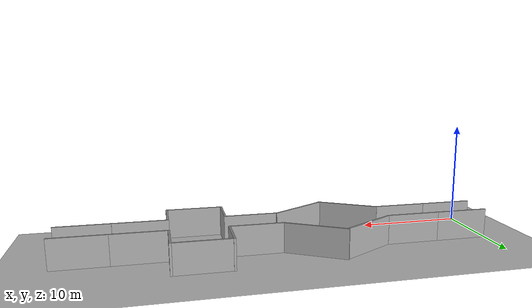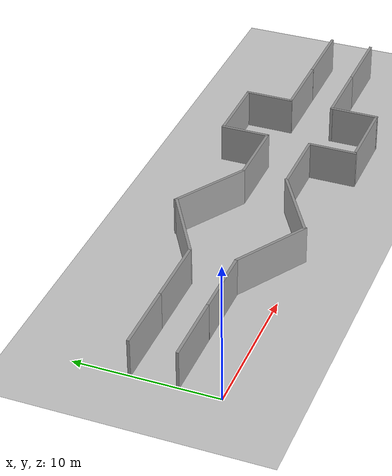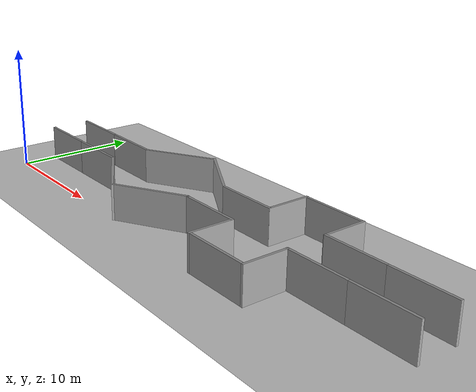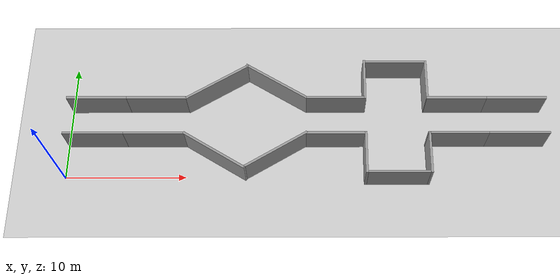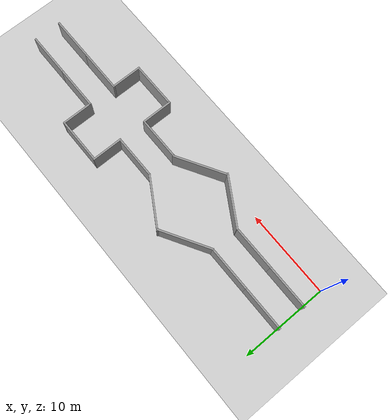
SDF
<sdf version="1.7">
 <world name="default">
  <light name="sun" type="directional">
   <pose>0 0 10 0 -0 0</pose>
   <diffuse>0.8 0.8 0.8 1</diffuse>
   <specular>0.2 0.2 0.2 1</specular>
   <attenuation>
    <range>1000</range>
    <constant>0.9</constant>
    <linear>0.01</linear>
    <quadratic>0.001</quadratic>
   </attenuation>
   <direction>-0.5 0.1 -0.9</direction>
   <spot><inner_angle>0</inner_angle><outer_angle>0</outer_angle><falloff>0</falloff></spot>
  </light>
  <model name="ground_plane">
   <static>1</static>
   <link name="link">
    <collision name="collision">
     <geometry><plane><normal>0 0 1</normal><size>100 100</size></plane></geometry>
     <surface>
      <contact><collide_bitmask>65535</collide_bitmask></contact>
      <friction><ode><mu>100</mu><mu2>50</mu2></ode></friction>
     </surface>
    </collision>
    <visual name="visual">
     <cast_shadows>0</cast_shadows>
     <geometry><plane><normal>0 0 1</normal><size>100 100</size></plane></geometry>
     <material>
      <script><uri>file://media/materials/scripts/gazebo.material</uri><name>Gazebo/Grey</name></script>
     </material>
    </visual>
   </link>
  </model>
  <gravity>0 0 -9.8</gravity>
  <magnetic_field>6e-06 2.3e-05 -4.2e-05</magnetic_field>
  <atmosphere type="adiabatic"/>
  <physics type="ode">
   <max_step_size>0.001</max_step_size>
   <real_time_factor>1</real_time_factor>
   <real_time_update_rate>1000</real_time_update_rate>
  </physics>
  <scene><ambient>0.4 0.4 0.4 1</ambient><background>0.7 0.7 0.7 1</background><shadows>1</shadows></scene>
  <spherical_coordinates>
   <surface_model>EARTH_WGS84</surface_model>
   <latitude_deg>0</latitude_deg>
   <longitude_deg>0</longitude_deg>
   <elevation>0</elevation>
   <heading_deg>0</heading_deg>
  </spherical_coordinates>
  <model name="grey_wall_5_clone_2">
   <link name="link">
    <pose>0 0 1.4 0 -0 0</pose>
    <inertial>
     <mass>1</mass>
     <inertia><ixx>1</ixx><ixy>0</ixy><ixz>0</ixz><iyy>1</iyy><iyz>0</iyz><izz>1</izz></inertia>
    </inertial>
    <visual name="visual">
     <cast_shadows>0</cast_shadows>
     <geometry><box><size>5 0.2 2.8</size></box></geometry>
     <material>
      <script>
       <uri>model://grey_wall/materials/scripts</uri>
       <uri>model://grey_wall/materials/textures</uri>
       <name>vrc/grey_wall</name>
      </script>
      <shader type="pixel"><normal_map>__default__</normal_map></shader>
      <ambient>1 1 1 1</ambient>
      <diffuse>1 1 1 1</diffuse>
      <specular>0 0 0 1</specular>
      <emissive>0 0 0 1</emissive>
     </material>
    </visual>
    <collision name="collision">
     <geometry><box><size>5 0.2 2.8</size></box></geometry>
     <surface>
      <friction>
       <ode><mu>1</mu><mu2>1</mu2><fdir1>0 0 0</fdir1><slip1>0</slip1><slip2>0</slip2></ode>
       <torsional>
        <coefficient>1</coefficient>
        <patch_radius>0</patch_radius>
        <surface_radius>0</surface_radius>
        <use_patch_radius>1</use_patch_radius>
        <ode><slip>0</slip></ode>
       </torsional>
      </friction>
      <bounce><restitution_coefficient>0</restitution_coefficient><threshold>1e+06</threshold></bounce>
      <contact>
       <collide_without_contact>0</collide_without_contact>
       <collide_without_contact_bitmask>1</collide_without_contact_bitmask>
       <collide_bitmask>1</collide_bitmask>
       <ode>
        <soft_cfm>0</soft_cfm>
        <soft_erp>0.2</soft_erp>
        <kp>1e+13</kp>
        <kd>1</kd>
        <max_vel>0.01</max_vel>
        <min_depth>0</min_depth>
       </ode>
       <bullet>
        <split_impulse>1</split_impulse>
        <split_impulse_penetration_threshold>-0.01</split_impulse_penetration_threshold>
        <soft_cfm>0</soft_cfm>
        <soft_erp>0.2</soft_erp>
        <kp>1e+13</kp>
        <kd>1</kd>
       </bullet>
      </contact>
     </surface>
    </collision>
   </link>
   <static>1</static>
   <pose>2.4979 6.11153 0 0 0 -0.000612</pose>
  </model>
  <model name="grey_wall_5_clone_2_clone">
   <link name="link">
    <pose>0 0 1.4 0 -0 0</pose>
    <inertial>
     <mass>1</mass>
     <inertia><ixx>1</ixx><ixy>0</ixy><ixz>0</ixz><iyy>1</iyy><iyz>0</iyz><izz>1</izz></inertia>
    </inertial>
    <visual name="visual">
     <cast_shadows>0</cast_shadows>
     <geometry><box><size>5 0.2 2.8</size></box></geometry>
     <material>
      <script>
       <uri>model://grey_wall/materials/scripts</uri>
       <uri>model://grey_wall/materials/textures</uri>
       <name>vrc/grey_wall</name>
      </script>
      <shader type="pixel"><normal_map>__default__</normal_map></shader>
      <ambient>1 1 1 1</ambient>
      <diffuse>1 1 1 1</diffuse>
      <specular>0 0 0 1</specular>
      <emissive>0 0 0 1</emissive>
     </material>
    </visual>
    <collision name="collision">
     <geometry><box><size>5 0.2 2.8</size></box></geometry>
     <surface>
      <friction>
       <ode><mu>1</mu><mu2>1</mu2><fdir1>0 0 0</fdir1><slip1>0</slip1><slip2>0</slip2></ode>
       <torsional>
        <coefficient>1</coefficient>
        <patch_radius>0</patch_radius>
        <surface_radius>0</surface_radius>
        <use_patch_radius>1</use_patch_radius>
        <ode><slip>0</slip></ode>
       </torsional>
      </friction>
      <bounce><restitution_coefficient>0</restitution_coefficient><threshold>1e+06</threshold></bounce>
      <contact>
       <collide_without_contact>0</collide_without_contact>
       <collide_without_contact_bitmask>1</collide_without_contact_bitmask>
       <collide_bitmask>1</collide_bitmask>
       <ode>
        <soft_cfm>0</soft_cfm>
        <soft_erp>0.2</soft_erp>
        <kp>1e+13</kp>
        <kd>1</kd>
        <max_vel>0.01</max_vel>
        <min_depth>0</min_depth>
       </ode>
       <bullet>
        <split_impulse>1</split_impulse>
        <split_impulse_penetration_threshold>-0.01</split_impulse_penetration_threshold>
        <soft_cfm>0</soft_cfm>
        <soft_erp>0.2</soft_erp>
        <kp>1e+13</kp>
        <kd>1</kd>
       </bullet>
      </contact>
     </surface>
    </collision>
   </link>
   <static>1</static>
   <pose>7.49794 6.10921 0 0 0 -0.000612</pose>
  </model>
  <model name="grey_wall_5_clone_2_clone_clone">
   <link name="link">
    <pose>0 0 1.4 0 -0 0</pose>
    <inertial>
     <mass>1</mass>
     <inertia><ixx>1</ixx><ixy>0</ixy><ixz>0</ixz><iyy>1</iyy><iyz>0</iyz><izz>1</izz></inertia>
    </inertial>
    <visual name="visual">
     <cast_shadows>0</cast_shadows>
     <geometry><box><size>5 0.2 2.8</size></box></geometry>
     <material>
      <script>
       <uri>model://grey_wall/materials/scripts</uri>
       <uri>model://grey_wall/materials/textures</uri>
       <name>vrc/grey_wall</name>
      </script>
      <shader type="pixel"><normal_map>__default__</normal_map></shader>
      <ambient>1 1 1 1</ambient>
      <diffuse>1 1 1 1</diffuse>
      <specular>0 0 0 1</specular>
      <emissive>0 0 0 1</emissive>
     </material>
    </visual>
    <collision name="collision">
     <geometry><box><size>5 0.2 2.8</size></box></geometry>
     <surface>
      <friction>
       <ode><mu>1</mu><mu2>1</mu2><fdir1>0 0 0</fdir1><slip1>0</slip1><slip2>0</slip2></ode>
       <torsional>
        <coefficient>1</coefficient>
        <patch_radius>0</patch_radius>
        <surface_radius>0</surface_radius>
        <use_patch_radius>1</use_patch_radius>
        <ode><slip>0</slip></ode>
       </torsional>
      </friction>
      <bounce><restitution_coefficient>0</restitution_coefficient><threshold>1e+06</threshold></bounce>
      <contact>
       <collide_without_contact>0</collide_without_contact>
       <collide_without_contact_bitmask>1</collide_without_contact_bitmask>
       <collide_bitmask>1</collide_bitmask>
       <ode>
        <soft_cfm>0</soft_cfm>
        <soft_erp>0.2</soft_erp>
        <kp>1e+13</kp>
        <kd>1</kd>
        <max_vel>0.01</max_vel>
        <min_depth>0</min_depth>
       </ode>
       <bullet>
        <split_impulse>1</split_impulse>
        <split_impulse_penetration_threshold>-0.01</split_impulse_penetration_threshold>
        <soft_cfm>0</soft_cfm>
        <soft_erp>0.2</soft_erp>
        <kp>1e+13</kp>
        <kd>1</kd>
       </bullet>
      </contact>
     </surface>
    </collision>
   </link>
   <static>1</static>
   <pose>27.5176 9.4776 0 0 0 -0.000612</pose>
  </model>
  <model name="grey_wall_5_clone_2_clone_clone_clone">
   <link name="link">
    <pose>0 0 1.4 0 -0 0</pose>
    <inertial>
     <mass>1</mass>
     <inertia><ixx>1</ixx><ixy>0</ixy><ixz>0</ixz><iyy>1</iyy><iyz>0</iyz><izz>1</izz></inertia>
    </inertial>
    <visual name="visual">
     <cast_shadows>0</cast_shadows>
     <geometry><box><size>5 0.2 2.8</size></box></geometry>
     <material>
      <script>
       <uri>model://grey_wall/materials/scripts</uri>
       <uri>model://grey_wall/materials/textures</uri>
       <name>vrc/grey_wall</name>
      </script>
      <shader type="pixel"><normal_map>__default__</normal_map></shader>
      <ambient>1 1 1 1</ambient>
      <diffuse>1 1 1 1</diffuse>
      <specular>0 0 0 1</specular>
      <emissive>0 0 0 1</emissive>
     </material>
    </visual>
    <collision name="collision">
     <geometry><box><size>5 0.2 2.8</size></box></geometry>
     <surface>
      <friction>
       <ode><mu>1</mu><mu2>1</mu2><fdir1>0 0 0</fdir1><slip1>0</slip1><slip2>0</slip2></ode>
       <torsional>
        <coefficient>1</coefficient>
        <patch_radius>0</patch_radius>
        <surface_radius>0</surface_radius>
        <use_patch_radius>1</use_patch_radius>
        <ode><slip>0</slip></ode>
       </torsional>
      </friction>
      <bounce><restitution_coefficient>0</restitution_coefficient><threshold>1e+06</threshold></bounce>
      <contact>
       <collide_without_contact>0</collide_without_contact>
       <collide_without_contact_bitmask>1</collide_without_contact_bitmask>
       <collide_bitmask>1</collide_bitmask>
       <ode>
        <soft_cfm>0</soft_cfm>
        <soft_erp>0.2</soft_erp>
        <kp>1e+13</kp>
        <kd>1</kd>
        <max_vel>0.01</max_vel>
        <min_depth>0</min_depth>
       </ode>
       <bullet>
        <split_impulse>1</split_impulse>
        <split_impulse_penetration_threshold>-0.01</split_impulse_penetration_threshold>
        <soft_cfm>0</soft_cfm>
        <soft_erp>0.2</soft_erp>
        <kp>1e+13</kp>
        <kd>1</kd>
       </bullet>
      </contact>
     </surface>
    </collision>
   </link>
   <static>1</static>
   <pose>22.5065 6.10085 0 0 0 -0.000612</pose>
  </model>
  <model name="grey_wall_5_clone_2_clone_clone_clone_0">
   <link name="link">
    <pose>0 0 1.4 0 -0 0</pose>
    <inertial>
     <mass>1</mass>
     <inertia><ixx>1</ixx><ixy>0</ixy><ixz>0</ixz><iyy>1</iyy><iyz>0</iyz><izz>1</izz></inertia>
    </inertial>
    <visual name="visual">
     <cast_shadows>0</cast_shadows>
     <geometry><box><size>5 0.2 2.8</size></box></geometry>
     <material>
      <script>
       <uri>model://grey_wall/materials/scripts</uri>
       <uri>model://grey_wall/materials/textures</uri>
       <name>vrc/grey_wall</name>
      </script>
      <shader type="pixel"><normal_map>__default__</normal_map></shader>
      <ambient>1 1 1 1</ambient>
      <diffuse>1 1 1 1</diffuse>
      <specular>0 0 0 1</specular>
      <emissive>0 0 0 1</emissive>
     </material>
    </visual>
    <collision name="collision">
     <geometry><box><size>5 0.2 2.8</size></box></geometry>
     <surface>
      <friction>
       <ode><mu>1</mu><mu2>1</mu2><fdir1>0 0 0</fdir1><slip1>0</slip1><slip2>0</slip2></ode>
       <torsional>
        <coefficient>1</coefficient>
        <patch_radius>0</patch_radius>
        <surface_radius>0</surface_radius>
        <use_patch_radius>1</use_patch_radius>
        <ode><slip>0</slip></ode>
       </torsional>
      </friction>
      <bounce><restitution_coefficient>0</restitution_coefficient><threshold>1e+06</threshold></bounce>
      <contact>
       <collide_without_contact>0</collide_without_contact>
       <collide_without_contact_bitmask>1</collide_without_contact_bitmask>
       <collide_bitmask>1</collide_bitmask>
       <ode>
        <soft_cfm>0</soft_cfm>
        <soft_erp>0.2</soft_erp>
        <kp>1e+13</kp>
        <kd>1</kd>
        <max_vel>0.01</max_vel>
        <min_depth>0</min_depth>
       </ode>
       <bullet>
        <split_impulse>1</split_impulse>
        <split_impulse_penetration_threshold>-0.01</split_impulse_penetration_threshold>
        <soft_cfm>0</soft_cfm>
        <soft_erp>0.2</soft_erp>
        <kp>1e+13</kp>
        <kd>1</kd>
       </bullet>
      </contact>
     </surface>
    </collision>
   </link>
   <static>1</static>
   <pose>37.5336 6.07066 0 0 0 -0.000612</pose>
  </model>
  <model name="grey_wall_5_clone_2_clone_clone_clone_clone">
   <link name="link">
    <pose>0 0 1.4 0 -0 0</pose>
    <inertial>
     <mass>1</mass>
     <inertia><ixx>1</ixx><ixy>0</ixy><ixz>0</ixz><iyy>1</iyy><iyz>0</iyz><izz>1</izz></inertia>
    </inertial>
    <visual name="visual">
     <cast_shadows>0</cast_shadows>
     <geometry><box><size>5 0.2 2.8</size></box></geometry>
     <material>
      <script>
       <uri>model://grey_wall/materials/scripts</uri>
       <uri>model://grey_wall/materials/textures</uri>
       <name>vrc/grey_wall</name>
      </script>
      <shader type="pixel"><normal_map>__default__</normal_map></shader>
      <ambient>1 1 1 1</ambient>
      <diffuse>1 1 1 1</diffuse>
      <specular>0 0 0 1</specular>
      <emissive>0 0 0 1</emissive>
     </material>
    </visual>
    <collision name="collision">
     <geometry><box><size>5 0.2 2.8</size></box></geometry>
     <surface>
      <friction>
       <ode><mu>1</mu><mu2>1</mu2><fdir1>0 0 0</fdir1><slip1>0</slip1><slip2>0</slip2></ode>
       <torsional>
        <coefficient>1</coefficient>
        <patch_radius>0</patch_radius>
        <surface_radius>0</surface_radius>
        <use_patch_radius>1</use_patch_radius>
        <ode><slip>0</slip></ode>
       </torsional>
      </friction>
      <bounce><restitution_coefficient>0</restitution_coefficient><threshold>1e+06</threshold></bounce>
      <contact>
       <collide_without_contact>0</collide_without_contact>
       <collide_without_contact_bitmask>1</collide_without_contact_bitmask>
       <collide_bitmask>1</collide_bitmask>
       <ode>
        <soft_cfm>0</soft_cfm>
        <soft_erp>0.2</soft_erp>
        <kp>1e+13</kp>
        <kd>1</kd>
        <max_vel>0.01</max_vel>
        <min_depth>0</min_depth>
       </ode>
       <bullet>
        <split_impulse>1</split_impulse>
        <split_impulse_penetration_threshold>-0.01</split_impulse_penetration_threshold>
        <soft_cfm>0</soft_cfm>
        <soft_erp>0.2</soft_erp>
        <kp>1e+13</kp>
        <kd>1</kd>
       </bullet>
      </contact>
     </surface>
    </collision>
   </link>
   <static>1</static>
   <pose>32.5422 6.07863 0 0 0 -0.000612</pose>
  </model>
  <model name="grey_wall_3.6_clone_0_clone_0">
   <link name="link">
    <pose>0 0 1.4 0 -0 0</pose>
    <inertial>
     <mass>1</mass>
     <inertia><ixx>1</ixx><ixy>0</ixy><ixz>0</ixz><iyy>1</iyy><iyz>0</iyz><izz>1</izz></inertia>
    </inertial>
    <visual name="visual">
     <cast_shadows>0</cast_shadows>
     <geometry><box><size>3.6 0.2 2.8</size></box></geometry>
     <material>
      <script>
       <uri>model://grey_wall/materials/scripts</uri>
       <uri>model://grey_wall/materials/textures</uri>
       <name>vrc/grey_wall</name>
      </script>
      <shader type="pixel"><normal_map>__default__</normal_map></shader>
      <ambient>1 1 1 1</ambient>
      <diffuse>1 1 1 1</diffuse>
      <specular>0 0 0 1</specular>
      <emissive>0 0 0 1</emissive>
     </material>
    </visual>
    <collision name="collision">
     <geometry><box><size>3.6 0.2 2.8</size></box></geometry>
     <surface>
      <friction>
       <ode><mu>1</mu><mu2>1</mu2><fdir1>0 0 0</fdir1><slip1>0</slip1><slip2>0</slip2></ode>
       <torsional>
        <coefficient>1</coefficient>
        <patch_radius>0</patch_radius>
        <surface_radius>0</surface_radius>
        <use_patch_radius>1</use_patch_radius>
        <ode><slip>0</slip></ode>
       </torsional>
      </friction>
      <bounce><restitution_coefficient>0</restitution_coefficient><threshold>1e+06</threshold></bounce>
      <contact>
       <collide_without_contact>0</collide_without_contact>
       <collide_without_contact_bitmask>1</collide_without_contact_bitmask>
       <collide_bitmask>1</collide_bitmask>
       <ode>
        <soft_cfm>0</soft_cfm>
        <soft_erp>0.2</soft_erp>
        <kp>1e+13</kp>
        <kd>1</kd>
        <max_vel>0.01</max_vel>
        <min_depth>0</min_depth>
       </ode>
       <bullet>
        <split_impulse>1</split_impulse>
        <split_impulse_penetration_threshold>-0.01</split_impulse_penetration_threshold>
        <soft_cfm>0</soft_cfm>
        <soft_erp>0.2</soft_erp>
        <kp>1e+13</kp>
        <kd>1</kd>
       </bullet>
      </contact>
     </surface>
    </collision>
   </link>
   <static>1</static>
   <pose>24.9156 7.80292 0 0 0 -1.57333</pose>
  </model>
  <model name="grey_wall_3.6_clone_0_clone_0_clone">
   <link name="link">
    <pose>0 0 1.4 0 -0 0</pose>
    <inertial>
     <mass>1</mass>
     <inertia><ixx>1</ixx><ixy>0</ixy><ixz>0</ixz><iyy>1</iyy><iyz>0</iyz><izz>1</izz></inertia>
    </inertial>
    <visual name="visual">
     <cast_shadows>0</cast_shadows>
     <geometry><box><size>3.6 0.2 2.8</size></box></geometry>
     <material>
      <script>
       <uri>model://grey_wall/materials/scripts</uri>
       <uri>model://grey_wall/materials/textures</uri>
       <name>vrc/grey_wall</name>
      </script>
      <shader type="pixel"><normal_map>__default__</normal_map></shader>
      <ambient>1 1 1 1</ambient>
      <diffuse>1 1 1 1</diffuse>
      <specular>0 0 0 1</specular>
      <emissive>0 0 0 1</emissive>
     </material>
    </visual>
    <collision name="collision">
     <geometry><box><size>3.6 0.2 2.8</size></box></geometry>
     <surface>
      <friction>
       <ode><mu>1</mu><mu2>1</mu2><fdir1>0 0 0</fdir1><slip1>0</slip1><slip2>0</slip2></ode>
       <torsional>
        <coefficient>1</coefficient>
        <patch_radius>0</patch_radius>
        <surface_radius>0</surface_radius>
        <use_patch_radius>1</use_patch_radius>
        <ode><slip>0</slip></ode>
       </torsional>
      </friction>
      <bounce><restitution_coefficient>0</restitution_coefficient><threshold>1e+06</threshold></bounce>
      <contact>
       <collide_without_contact>0</collide_without_contact>
       <collide_without_contact_bitmask>1</collide_without_contact_bitmask>
       <collide_bitmask>1</collide_bitmask>
       <ode>
        <soft_cfm>0</soft_cfm>
        <soft_erp>0.2</soft_erp>
        <kp>1e+13</kp>
        <kd>1</kd>
        <max_vel>0.01</max_vel>
        <min_depth>0</min_depth>
       </ode>
       <bullet>
        <split_impulse>1</split_impulse>
        <split_impulse_penetration_threshold>-0.01</split_impulse_penetration_threshold>
        <soft_cfm>0</soft_cfm>
        <soft_erp>0.2</soft_erp>
        <kp>1e+13</kp>
        <kd>1</kd>
       </bullet>
      </contact>
     </surface>
    </collision>
   </link>
   <static>1</static>
   <pose>30.1025 7.78202 0 0 0 -1.57333</pose>
  </model>
  <model name="grey_wall_6_clone_clone">
   <link name="link">
    <pose>0 0 1.4 0 -0 0</pose>
    <inertial>
     <mass>1</mass>
     <inertia><ixx>1</ixx><ixy>0</ixy><ixz>0</ixz><iyy>1</iyy><iyz>0</iyz><izz>1</izz></inertia>
    </inertial>
    <visual name="visual">
     <cast_shadows>0</cast_shadows>
     <geometry><box><size>6 0.2 2.8</size></box></geometry>
     <material>
      <script>
       <uri>model://grey_wall/materials/scripts</uri>
       <uri>model://grey_wall/materials/textures</uri>
       <name>vrc/grey_wall</name>
      </script>
      <shader type="pixel"><normal_map>__default__</normal_map></shader>
      <ambient>1 1 1 1</ambient>
      <diffuse>1 1 1 1</diffuse>
      <specular>0 0 0 1</specular>
      <emissive>0 0 0 1</emissive>
     </material>
    </visual>
    <collision name="collision">
     <geometry><box><size>6 0.2 2.8</size></box></geometry>
     <surface>
      <friction>
       <ode><mu>1</mu><mu2>1</mu2><fdir1>0 0 0</fdir1><slip1>0</slip1><slip2>0</slip2></ode>
       <torsional>
        <coefficient>1</coefficient>
        <patch_radius>0</patch_radius>
        <surface_radius>0</surface_radius>
        <use_patch_radius>1</use_patch_radius>
        <ode><slip>0</slip></ode>
       </torsional>
      </friction>
      <bounce><restitution_coefficient>0</restitution_coefficient><threshold>1e+06</threshold></bounce>
      <contact>
       <collide_without_contact>0</collide_without_contact>
       <collide_without_contact_bitmask>1</collide_without_contact_bitmask>
       <collide_bitmask>1</collide_bitmask>
       <ode>
        <soft_cfm>0</soft_cfm>
        <soft_erp>0.2</soft_erp>
        <kp>1e+13</kp>
        <kd>1</kd>
        <max_vel>0.01</max_vel>
        <min_depth>0</min_depth>
       </ode>
       <bullet>
        <split_impulse>1</split_impulse>
        <split_impulse_penetration_threshold>-0.01</split_impulse_penetration_threshold>
        <soft_cfm>0</soft_cfm>
        <soft_erp>0.2</soft_erp>
        <kp>1e+13</kp>
        <kd>1</kd>
       </bullet>
      </contact>
     </surface>
    </collision>
   </link>
   <static>1</static>
   <pose>12.5135 7.59176 0 0 -0 0.538865</pose>
  </model>
  <model name="grey_wall_6_clone_clone_0">
   <link name="link">
    <pose>0 0 1.4 0 -0 0</pose>
    <inertial>
     <mass>1</mass>
     <inertia><ixx>1</ixx><ixy>0</ixy><ixz>0</ixz><iyy>1</iyy><iyz>0</iyz><izz>1</izz></inertia>
    </inertial>
    <visual name="visual">
     <cast_shadows>0</cast_shadows>
     <geometry><box><size>6 0.2 2.8</size></box></geometry>
     <material>
      <script>
       <uri>model://grey_wall/materials/scripts</uri>
       <uri>model://grey_wall/materials/textures</uri>
       <name>vrc/grey_wall</name>
      </script>
      <shader type="pixel"><normal_map>__default__</normal_map></shader>
      <ambient>1 1 1 1</ambient>
      <diffuse>1 1 1 1</diffuse>
      <specular>0 0 0 1</specular>
      <emissive>0 0 0 1</emissive>
     </material>
    </visual>
    <collision name="collision">
     <geometry><box><size>6 0.2 2.8</size></box></geometry>
     <surface>
      <friction>
       <ode><mu>1</mu><mu2>1</mu2><fdir1>0 0 0</fdir1><slip1>0</slip1><slip2>0</slip2></ode>
       <torsional>
        <coefficient>1</coefficient>
        <patch_radius>0</patch_radius>
        <surface_radius>0</surface_radius>
        <use_patch_radius>1</use_patch_radius>
        <ode><slip>0</slip></ode>
       </torsional>
      </friction>
      <bounce><restitution_coefficient>0</restitution_coefficient><threshold>1e+06</threshold></bounce>
      <contact>
       <collide_without_contact>0</collide_without_contact>
       <collide_without_contact_bitmask>1</collide_without_contact_bitmask>
       <collide_bitmask>1</collide_bitmask>
       <ode>
        <soft_cfm>0</soft_cfm>
        <soft_erp>0.2</soft_erp>
        <kp>1e+13</kp>
        <kd>1</kd>
        <max_vel>0.01</max_vel>
        <min_depth>0</min_depth>
       </ode>
       <bullet>
        <split_impulse>1</split_impulse>
        <split_impulse_penetration_threshold>-0.01</split_impulse_penetration_threshold>
        <soft_cfm>0</soft_cfm>
        <soft_erp>0.2</soft_erp>
        <kp>1e+13</kp>
        <kd>1</kd>
       </bullet>
      </contact>
     </surface>
    </collision>
   </link>
   <static>1</static>
   <pose>17.4856 7.64477 0 0 -0 2.59684</pose>
  </model>
  <model name="grey_wall_5_clone_2_clone_0">
   <link name="link">
    <pose>0 0 1.4 0 -0 0</pose>
    <inertial>
     <mass>1</mass>
     <inertia><ixx>1</ixx><ixy>0</ixy><ixz>0</ixz><iyy>1</iyy><iyz>0</iyz><izz>1</izz></inertia>
    </inertial>
    <visual name="visual">
     <cast_shadows>0</cast_shadows>
     <geometry><box><size>5 0.2 2.8</size></box></geometry>
     <material>
      <script>
       <uri>model://grey_wall/materials/scripts</uri>
       <uri>model://grey_wall/materials/textures</uri>
       <name>vrc/grey_wall</name>
      </script>
      <shader type="pixel"><normal_map>__default__</normal_map></shader>
      <ambient>1 1 1 1</ambient>
      <diffuse>1 1 1 1</diffuse>
      <specular>0 0 0 1</specular>
      <emissive>0 0 0 1</emissive>
     </material>
    </visual>
    <collision name="collision">
     <geometry><box><size>5 0.2 2.8</size></box></geometry>
     <surface>
      <friction>
       <ode><mu>1</mu><mu2>1</mu2><fdir1>0 0 0</fdir1><slip1>0</slip1><slip2>0</slip2></ode>
       <torsional>
        <coefficient>1</coefficient>
        <patch_radius>0</patch_radius>
        <surface_radius>0</surface_radius>
        <use_patch_radius>1</use_patch_radius>
        <ode><slip>0</slip></ode>
       </torsional>
      </friction>
      <bounce><restitution_coefficient>0</restitution_coefficient><threshold>1e+06</threshold></bounce>
      <contact>
       <collide_without_contact>0</collide_without_contact>
       <collide_without_contact_bitmask>1</collide_without_contact_bitmask>
       <collide_bitmask>1</collide_bitmask>
       <ode>
        <soft_cfm>0</soft_cfm>
        <soft_erp>0.2</soft_erp>
        <kp>1e+13</kp>
        <kd>1</kd>
        <max_vel>0.01</max_vel>
        <min_depth>0</min_depth>
       </ode>
       <bullet>
        <split_impulse>1</split_impulse>
        <split_impulse_penetration_threshold>-0.01</split_impulse_penetration_threshold>
        <soft_cfm>0</soft_cfm>
        <soft_erp>0.2</soft_erp>
        <kp>1e+13</kp>
        <kd>1</kd>
       </bullet>
      </contact>
     </surface>
    </collision>
   </link>
   <static>1</static>
   <pose>2.49942 2.89305 0 0 0 -0.000612</pose>
  </model>
  <model name="grey_wall_5_clone_2_clone_clone_0">
   <link name="link">
    <pose>0 0 1.4 0 -0 0</pose>
    <inertial>
     <mass>1</mass>
     <inertia><ixx>1</ixx><ixy>0</ixy><ixz>0</ixz><iyy>1</iyy><iyz>0</iyz><izz>1</izz></inertia>
    </inertial>
    <visual name="visual">
     <cast_shadows>0</cast_shadows>
     <geometry><box><size>5 0.2 2.8</size></box></geometry>
     <material>
      <script>
       <uri>model://grey_wall/materials/scripts</uri>
       <uri>model://grey_wall/materials/textures</uri>
       <name>vrc/grey_wall</name>
      </script>
      <shader type="pixel"><normal_map>__default__</normal_map></shader>
      <ambient>1 1 1 1</ambient>
      <diffuse>1 1 1 1</diffuse>
      <specular>0 0 0 1</specular>
      <emissive>0 0 0 1</emissive>
     </material>
    </visual>
    <collision name="collision">
     <geometry><box><size>5 0.2 2.8</size></box></geometry>
     <surface>
      <friction>
       <ode><mu>1</mu><mu2>1</mu2><fdir1>0 0 0</fdir1><slip1>0</slip1><slip2>0</slip2></ode>
       <torsional>
        <coefficient>1</coefficient>
        <patch_radius>0</patch_radius>
        <surface_radius>0</surface_radius>
        <use_patch_radius>1</use_patch_radius>
        <ode><slip>0</slip></ode>
       </torsional>
      </friction>
      <bounce><restitution_coefficient>0</restitution_coefficient><threshold>1e+06</threshold></bounce>
      <contact>
       <collide_without_contact>0</collide_without_contact>
       <collide_without_contact_bitmask>1</collide_without_contact_bitmask>
       <collide_bitmask>1</collide_bitmask>
       <ode>
        <soft_cfm>0</soft_cfm>
        <soft_erp>0.2</soft_erp>
        <kp>1e+13</kp>
        <kd>1</kd>
        <max_vel>0.01</max_vel>
        <min_depth>0</min_depth>
       </ode>
       <bullet>
        <split_impulse>1</split_impulse>
        <split_impulse_penetration_threshold>-0.01</split_impulse_penetration_threshold>
        <soft_cfm>0</soft_cfm>
        <soft_erp>0.2</soft_erp>
        <kp>1e+13</kp>
        <kd>1</kd>
       </bullet>
      </contact>
     </surface>
    </collision>
   </link>
   <static>1</static>
   <pose>7.49735 2.88481 0 0 0 -0.000612</pose>
  </model>
  <model name="grey_wall_6_clone_clone_0_clone">
   <link name="link">
    <pose>0 0 1.4 0 -0 0</pose>
    <inertial>
     <mass>1</mass>
     <inertia><ixx>1</ixx><ixy>0</ixy><ixz>0</ixz><iyy>1</iyy><iyz>0</iyz><izz>1</izz></inertia>
    </inertial>
    <visual name="visual">
     <cast_shadows>0</cast_shadows>
     <geometry><box><size>6 0.2 2.8</size></box></geometry>
     <material>
      <script>
       <uri>model://grey_wall/materials/scripts</uri>
       <uri>model://grey_wall/materials/textures</uri>
       <name>vrc/grey_wall</name>
      </script>
      <shader type="pixel"><normal_map>__default__</normal_map></shader>
      <ambient>1 1 1 1</ambient>
      <diffuse>1 1 1 1</diffuse>
      <specular>0 0 0 1</specular>
      <emissive>0 0 0 1</emissive>
     </material>
    </visual>
    <collision name="collision">
     <geometry><box><size>6 0.2 2.8</size></box></geometry>
     <surface>
      <friction>
       <ode><mu>1</mu><mu2>1</mu2><fdir1>0 0 0</fdir1><slip1>0</slip1><slip2>0</slip2></ode>
       <torsional>
        <coefficient>1</coefficient>
        <patch_radius>0</patch_radius>
        <surface_radius>0</surface_radius>
        <use_patch_radius>1</use_patch_radius>
        <ode><slip>0</slip></ode>
       </torsional>
      </friction>
      <bounce><restitution_coefficient>0</restitution_coefficient><threshold>1e+06</threshold></bounce>
      <contact>
       <collide_without_contact>0</collide_without_contact>
       <collide_without_contact_bitmask>1</collide_without_contact_bitmask>
       <collide_bitmask>1</collide_bitmask>
       <ode>
        <soft_cfm>0</soft_cfm>
        <soft_erp>0.2</soft_erp>
        <kp>1e+13</kp>
        <kd>1</kd>
        <max_vel>0.01</max_vel>
        <min_depth>0</min_depth>
       </ode>
       <bullet>
        <split_impulse>1</split_impulse>
        <split_impulse_penetration_threshold>-0.01</split_impulse_penetration_threshold>
        <soft_cfm>0</soft_cfm>
        <soft_erp>0.2</soft_erp>
        <kp>1e+13</kp>
        <kd>1</kd>
       </bullet>
      </contact>
     </surface>
    </collision>
   </link>
   <static>1</static>
   <pose>12.4925 1.37957 0 0 -0 2.59684</pose>
  </model>
  <model name="grey_wall_6_clone_clone_clone">
   <link name="link">
    <pose>0 0 1.4 0 -0 0</pose>
    <inertial>
     <mass>1</mass>
     <inertia><ixx>1</ixx><ixy>0</ixy><ixz>0</ixz><iyy>1</iyy><iyz>0</iyz><izz>1</izz></inertia>
    </inertial>
    <visual name="visual">
     <cast_shadows>0</cast_shadows>
     <geometry><box><size>6 0.2 2.8</size></box></geometry>
     <material>
      <script>
       <uri>model://grey_wall/materials/scripts</uri>
       <uri>model://grey_wall/materials/textures</uri>
       <name>vrc/grey_wall</name>
      </script>
      <shader type="pixel"><normal_map>__default__</normal_map></shader>
      <ambient>1 1 1 1</ambient>
      <diffuse>1 1 1 1</diffuse>
      <specular>0 0 0 1</specular>
      <emissive>0 0 0 1</emissive>
     </material>
    </visual>
    <collision name="collision">
     <geometry><box><size>6 0.2 2.8</size></box></geometry>
     <surface>
      <friction>
       <ode><mu>1</mu><mu2>1</mu2><fdir1>0 0 0</fdir1><slip1>0</slip1><slip2>0</slip2></ode>
       <torsional>
        <coefficient>1</coefficient>
        <patch_radius>0</patch_radius>
        <surface_radius>0</surface_radius>
        <use_patch_radius>1</use_patch_radius>
        <ode><slip>0</slip></ode>
       </torsional>
      </friction>
      <bounce><restitution_coefficient>0</restitution_coefficient><threshold>1e+06</threshold></bounce>
      <contact>
       <collide_without_contact>0</collide_without_contact>
       <collide_without_contact_bitmask>1</collide_without_contact_bitmask>
       <collide_bitmask>1</collide_bitmask>
       <ode>
        <soft_cfm>0</soft_cfm>
        <soft_erp>0.2</soft_erp>
        <kp>1e+13</kp>
        <kd>1</kd>
        <max_vel>0.01</max_vel>
        <min_depth>0</min_depth>
       </ode>
       <bullet>
        <split_impulse>1</split_impulse>
        <split_impulse_penetration_threshold>-0.01</split_impulse_penetration_threshold>
        <soft_cfm>0</soft_cfm>
        <soft_erp>0.2</soft_erp>
        <kp>1e+13</kp>
        <kd>1</kd>
       </bullet>
      </contact>
     </surface>
    </collision>
   </link>
   <static>1</static>
   <pose>17.5047 1.44526 0 0 -0 0.538865</pose>
  </model>
  <model name="grey_wall_5_clone_2_clone_clone_clone_clone_0">
   <link name="link">
    <pose>0 0 1.4 0 -0 0</pose>
    <inertial>
     <mass>1</mass>
     <inertia><ixx>1</ixx><ixy>0</ixy><ixz>0</ixz><iyy>1</iyy><iyz>0</iyz><izz>1</izz></inertia>
    </inertial>
    <visual name="visual">
     <cast_shadows>0</cast_shadows>
     <geometry><box><size>5 0.2 2.8</size></box></geometry>
     <material>
      <script>
       <uri>model://grey_wall/materials/scripts</uri>
       <uri>model://grey_wall/materials/textures</uri>
       <name>vrc/grey_wall</name>
      </script>
      <shader type="pixel"><normal_map>__default__</normal_map></shader>
      <ambient>1 1 1 1</ambient>
      <diffuse>1 1 1 1</diffuse>
      <specular>0 0 0 1</specular>
      <emissive>0 0 0 1</emissive>
     </material>
    </visual>
    <collision name="collision">
     <geometry><box><size>5 0.2 2.8</size></box></geometry>
     <surface>
      <friction>
       <ode><mu>1</mu><mu2>1</mu2><fdir1>0 0 0</fdir1><slip1>0</slip1><slip2>0</slip2></ode>
       <torsional>
        <coefficient>1</coefficient>
        <patch_radius>0</patch_radius>
        <surface_radius>0</surface_radius>
        <use_patch_radius>1</use_patch_radius>
        <ode><slip>0</slip></ode>
       </torsional>
      </friction>
      <bounce><restitution_coefficient>0</restitution_coefficient><threshold>1e+06</threshold></bounce>
      <contact>
       <collide_without_contact>0</collide_without_contact>
       <collide_without_contact_bitmask>1</collide_without_contact_bitmask>
       <collide_bitmask>1</collide_bitmask>
       <ode>
        <soft_cfm>0</soft_cfm>
        <soft_erp>0.2</soft_erp>
        <kp>1e+13</kp>
        <kd>1</kd>
        <max_vel>0.01</max_vel>
        <min_depth>0</min_depth>
       </ode>
       <bullet>
        <split_impulse>1</split_impulse>
        <split_impulse_penetration_threshold>-0.01</split_impulse_penetration_threshold>
        <soft_cfm>0</soft_cfm>
        <soft_erp>0.2</soft_erp>
        <kp>1e+13</kp>
        <kd>1</kd>
       </bullet>
      </contact>
     </surface>
    </collision>
   </link>
   <static>1</static>
   <pose>22.4898 2.90015 0 0 0 -0.000612</pose>
  </model>
  <model name="grey_wall_3.6_clone_0_clone_0_clone_0">
   <link name="link">
    <pose>0 0 1.4 0 -0 0</pose>
    <inertial>
     <mass>1</mass>
     <inertia><ixx>1</ixx><ixy>0</ixy><ixz>0</ixz><iyy>1</iyy><iyz>0</iyz><izz>1</izz></inertia>
    </inertial>
    <visual name="visual">
     <cast_shadows>0</cast_shadows>
     <geometry><box><size>3.6 0.2 2.8</size></box></geometry>
     <material>
      <script>
       <uri>model://grey_wall/materials/scripts</uri>
       <uri>model://grey_wall/materials/textures</uri>
       <name>vrc/grey_wall</name>
      </script>
      <shader type="pixel"><normal_map>__default__</normal_map></shader>
      <ambient>1 1 1 1</ambient>
      <diffuse>1 1 1 1</diffuse>
      <specular>0 0 0 1</specular>
      <emissive>0 0 0 1</emissive>
     </material>
    </visual>
    <collision name="collision">
     <geometry><box><size>3.6 0.2 2.8</size></box></geometry>
     <surface>
      <friction>
       <ode><mu>1</mu><mu2>1</mu2><fdir1>0 0 0</fdir1><slip1>0</slip1><slip2>0</slip2></ode>
       <torsional>
        <coefficient>1</coefficient>
        <patch_radius>0</patch_radius>
        <surface_radius>0</surface_radius>
        <use_patch_radius>1</use_patch_radius>
        <ode><slip>0</slip></ode>
       </torsional>
      </friction>
      <bounce><restitution_coefficient>0</restitution_coefficient><threshold>1e+06</threshold></bounce>
      <contact>
       <collide_without_contact>0</collide_without_contact>
       <collide_without_contact_bitmask>1</collide_without_contact_bitmask>
       <collide_bitmask>1</collide_bitmask>
       <ode>
        <soft_cfm>0</soft_cfm>
        <soft_erp>0.2</soft_erp>
        <kp>1e+13</kp>
        <kd>1</kd>
        <max_vel>0.01</max_vel>
        <min_depth>0</min_depth>
       </ode>
       <bullet>
        <split_impulse>1</split_impulse>
        <split_impulse_penetration_threshold>-0.01</split_impulse_penetration_threshold>
        <soft_cfm>0</soft_cfm>
        <soft_erp>0.2</soft_erp>
        <kp>1e+13</kp>
        <kd>1</kd>
       </bullet>
      </contact>
     </surface>
    </collision>
   </link>
   <static>1</static>
   <pose>24.8899 1.1961 0 0 0 -1.57333</pose>
  </model>
  <model name="grey_wall_3.6_clone_0_clone_0_clone_1">
   <link name="link">
    <pose>0 0 1.4 0 -0 0</pose>
    <inertial>
     <mass>1</mass>
     <inertia><ixx>1</ixx><ixy>0</ixy><ixz>0</ixz><iyy>1</iyy><iyz>0</iyz><izz>1</izz></inertia>
    </inertial>
    <visual name="visual">
     <cast_shadows>0</cast_shadows>
     <geometry><box><size>3.6 0.2 2.8</size></box></geometry>
     <material>
      <script>
       <uri>model://grey_wall/materials/scripts</uri>
       <uri>model://grey_wall/materials/textures</uri>
       <name>vrc/grey_wall</name>
      </script>
      <shader type="pixel"><normal_map>__default__</normal_map></shader>
      <ambient>1 1 1 1</ambient>
      <diffuse>1 1 1 1</diffuse>
      <specular>0 0 0 1</specular>
      <emissive>0 0 0 1</emissive>
     </material>
    </visual>
    <collision name="collision">
     <geometry><box><size>3.6 0.2 2.8</size></box></geometry>
     <surface>
      <friction>
       <ode><mu>1</mu><mu2>1</mu2><fdir1>0 0 0</fdir1><slip1>0</slip1><slip2>0</slip2></ode>
       <torsional>
        <coefficient>1</coefficient>
        <patch_radius>0</patch_radius>
        <surface_radius>0</surface_radius>
        <use_patch_radius>1</use_patch_radius>
        <ode><slip>0</slip></ode>
       </torsional>
      </friction>
      <bounce><restitution_coefficient>0</restitution_coefficient><threshold>1e+06</threshold></bounce>
      <contact>
       <collide_without_contact>0</collide_without_contact>
       <collide_without_contact_bitmask>1</collide_without_contact_bitmask>
       <collide_bitmask>1</collide_bitmask>
       <ode>
        <soft_cfm>0</soft_cfm>
        <soft_erp>0.2</soft_erp>
        <kp>1e+13</kp>
        <kd>1</kd>
        <max_vel>0.01</max_vel>
        <min_depth>0</min_depth>
       </ode>
       <bullet>
        <split_impulse>1</split_impulse>
        <split_impulse_penetration_threshold>-0.01</split_impulse_penetration_threshold>
        <soft_cfm>0</soft_cfm>
        <soft_erp>0.2</soft_erp>
        <kp>1e+13</kp>
        <kd>1</kd>
       </bullet>
      </contact>
     </surface>
    </collision>
   </link>
   <static>1</static>
   <pose>30.1158 1.19396 0 0 0 -1.57333</pose>
  </model>
  <model name="grey_wall_5_clone_2_clone_clone_clone_1">
   <link name="link">
    <pose>0 0 1.4 0 -0 0</pose>
    <inertial>
     <mass>1</mass>
     <inertia><ixx>1</ixx><ixy>0</ixy><ixz>0</ixz><iyy>1</iyy><iyz>0</iyz><izz>1</izz></inertia>
    </inertial>
    <visual name="visual">
     <cast_shadows>0</cast_shadows>
     <geometry><box><size>5 0.2 2.8</size></box></geometry>
     <material>
      <script>
       <uri>model://grey_wall/materials/scripts</uri>
       <uri>model://grey_wall/materials/textures</uri>
       <name>vrc/grey_wall</name>
      </script>
      <shader type="pixel"><normal_map>__default__</normal_map></shader>
      <ambient>1 1 1 1</ambient>
      <diffuse>1 1 1 1</diffuse>
      <specular>0 0 0 1</specular>
      <emissive>0 0 0 1</emissive>
     </material>
    </visual>
    <collision name="collision">
     <geometry><box><size>5 0.2 2.8</size></box></geometry>
     <surface>
      <friction>
       <ode><mu>1</mu><mu2>1</mu2><fdir1>0 0 0</fdir1><slip1>0</slip1><slip2>0</slip2></ode>
       <torsional>
        <coefficient>1</coefficient>
        <patch_radius>0</patch_radius>
        <surface_radius>0</surface_radius>
        <use_patch_radius>1</use_patch_radius>
        <ode><slip>0</slip></ode>
       </torsional>
      </friction>
      <bounce><restitution_coefficient>0</restitution_coefficient><threshold>1e+06</threshold></bounce>
      <contact>
       <collide_without_contact>0</collide_without_contact>
       <collide_without_contact_bitmask>1</collide_without_contact_bitmask>
       <collide_bitmask>1</collide_bitmask>
       <ode>
        <soft_cfm>0</soft_cfm>
        <soft_erp>0.2</soft_erp>
        <kp>1e+13</kp>
        <kd>1</kd>
        <max_vel>0.01</max_vel>
        <min_depth>0</min_depth>
       </ode>
       <bullet>
        <split_impulse>1</split_impulse>
        <split_impulse_penetration_threshold>-0.01</split_impulse_penetration_threshold>
        <soft_cfm>0</soft_cfm>
        <soft_erp>0.2</soft_erp>
        <kp>1e+13</kp>
        <kd>1</kd>
       </bullet>
      </contact>
     </surface>
    </collision>
   </link>
   <static>1</static>
   <pose>27.5041 -0.499384 0 0 0 -0.000612</pose>
  </model>
  <model name="grey_wall_5_clone_2_clone_clone_clone_clone_clone">
   <link name="link">
    <pose>0 0 1.4 0 -0 0</pose>
    <inertial>
     <mass>1</mass>
     <inertia><ixx>1</ixx><ixy>0</ixy><ixz>0</ixz><iyy>1</iyy><iyz>0</iyz><izz>1</izz></inertia>
    </inertial>
    <visual name="visual">
     <cast_shadows>0</cast_shadows>
     <geometry><box><size>5 0.2 2.8</size></box></geometry>
     <material>
      <script>
       <uri>model://grey_wall/materials/scripts</uri>
       <uri>model://grey_wall/materials/textures</uri>
       <name>vrc/grey_wall</name>
      </script>
      <shader type="pixel"><normal_map>__default__</normal_map></shader>
      <ambient>1 1 1 1</ambient>
      <diffuse>1 1 1 1</diffuse>
      <specular>0 0 0 1</specular>
      <emissive>0 0 0 1</emissive>
     </material>
    </visual>
    <collision name="collision">
     <geometry><box><size>5 0.2 2.8</size></box></geometry>
     <surface>
      <friction>
       <ode><mu>1</mu><mu2>1</mu2><fdir1>0 0 0</fdir1><slip1>0</slip1><slip2>0</slip2></ode>
       <torsional>
        <coefficient>1</coefficient>
        <patch_radius>0</patch_radius>
        <surface_radius>0</surface_radius>
        <use_patch_radius>1</use_patch_radius>
        <ode><slip>0</slip></ode>
       </torsional>
      </friction>
      <bounce><restitution_coefficient>0</restitution_coefficient><threshold>1e+06</threshold></bounce>
      <contact>
       <collide_without_contact>0</collide_without_contact>
       <collide_without_contact_bitmask>1</collide_without_contact_bitmask>
       <collide_bitmask>1</collide_bitmask>
       <ode>
        <soft_cfm>0</soft_cfm>
        <soft_erp>0.2</soft_erp>
        <kp>1e+13</kp>
        <kd>1</kd>
        <max_vel>0.01</max_vel>
        <min_depth>0</min_depth>
       </ode>
       <bullet>
        <split_impulse>1</split_impulse>
        <split_impulse_penetration_threshold>-0.01</split_impulse_penetration_threshold>
        <soft_cfm>0</soft_cfm>
        <soft_erp>0.2</soft_erp>
        <kp>1e+13</kp>
        <kd>1</kd>
       </bullet>
      </contact>
     </surface>
    </collision>
   </link>
   <static>1</static>
   <pose>32.5049 2.91292 0 0 0 -0.000612</pose>
  </model>
  <model name="grey_wall_5_clone_2_clone_clone_clone_0_clone">
   <link name="link">
    <pose>0 0 1.4 0 -0 0</pose>
    <inertial>
     <mass>1</mass>
     <inertia><ixx>1</ixx><ixy>0</ixy><ixz>0</ixz><iyy>1</iyy><iyz>0</iyz><izz>1</izz></inertia>
    </inertial>
    <visual name="visual">
     <cast_shadows>0</cast_shadows>
     <geometry><box><size>5 0.2 2.8</size></box></geometry>
     <material>
      <script>
       <uri>model://grey_wall/materials/scripts</uri>
       <uri>model://grey_wall/materials/textures</uri>
       <name>vrc/grey_wall</name>
      </script>
      <shader type="pixel"><normal_map>__default__</normal_map></shader>
      <ambient>1 1 1 1</ambient>
      <diffuse>1 1 1 1</diffuse>
      <specular>0 0 0 1</specular>
      <emissive>0 0 0 1</emissive>
     </material>
    </visual>
    <collision name="collision">
     <geometry><box><size>5 0.2 2.8</size></box></geometry>
     <surface>
      <friction>
       <ode><mu>1</mu><mu2>1</mu2><fdir1>0 0 0</fdir1><slip1>0</slip1><slip2>0</slip2></ode>
       <torsional>
        <coefficient>1</coefficient>
        <patch_radius>0</patch_radius>
        <surface_radius>0</surface_radius>
        <use_patch_radius>1</use_patch_radius>
        <ode><slip>0</slip></ode>
       </torsional>
      </friction>
      <bounce><restitution_coefficient>0</restitution_coefficient><threshold>1e+06</threshold></bounce>
      <contact>
       <collide_without_contact>0</collide_without_contact>
       <collide_without_contact_bitmask>1</collide_without_contact_bitmask>
       <collide_bitmask>1</collide_bitmask>
       <ode>
        <soft_cfm>0</soft_cfm>
        <soft_erp>0.2</soft_erp>
        <kp>1e+13</kp>
        <kd>1</kd>
        <max_vel>0.01</max_vel>
        <min_depth>0</min_depth>
       </ode>
       <bullet>
        <split_impulse>1</split_impulse>
        <split_impulse_penetration_threshold>-0.01</split_impulse_penetration_threshold>
        <soft_cfm>0</soft_cfm>
        <soft_erp>0.2</soft_erp>
        <kp>1e+13</kp>
        <kd>1</kd>
       </bullet>
      </contact>
     </surface>
    </collision>
   </link>
   <static>1</static>
   <pose>37.5036 2.91059 0 0 0 -0.000612</pose>
  </model>
 </world>
</sdf>
